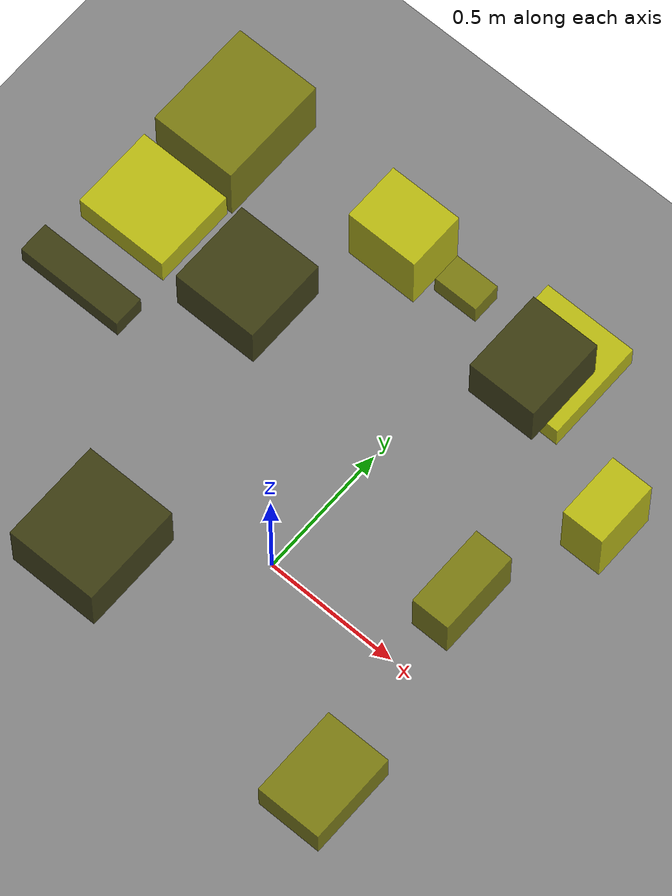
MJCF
<?xml version="1.0"?>
<mujoco model="obstacle_scene">
  <compiler angle="radian" coordinate="local"/>
  <option timestep="0.001" gravity="0 0 -9.81"/>

  <asset>
    <material name="obstacle_mat" rgba="0.8 0.8 0.0 0.8"/>
    <material name="ground_mat" rgba="0.5 0.5 0.5 1"/>
  </asset>

  <worldbody>
    <!-- Ground plane -->
    <geom name="ground" type="plane" size="3 3 0.1" material="ground_mat"/>

    <!-- Obstacles -->
    <body name="obstacle_0" pos="-0.294047 -0.498127 0.677630">
      <geom name="obs_0" type="box" size="0.167740 0.186006 0.105193" rgba="0.2 0.2 0.0 0.8"/>
    </body>
    <body name="obstacle_1" pos="0.632786 0.178173 0.454026">
      <geom name="obs_1" type="box" size="0.071756 0.153605 0.095304" rgba="0.5 0.5 0.0 0.8"/>
    </body>
    <body name="obstacle_2" pos="0.453056 0.814883 0.837150">
      <geom name="obs_2" type="box" size="0.170803 0.182468 0.049147" rgba="0.8 0.8 0.0 0.8"/>
    </body>
    <body name="obstacle_3" pos="0.525713 0.613955 1.242700">
      <geom name="obs_3" type="box" size="0.124753 0.149126 0.095150" rgba="0.2 0.2 0.0 0.8"/>
    </body>
    <body name="obstacle_4" pos="-0.821484 0.789135 0.900198">
      <geom name="obs_4" type="box" size="0.157203 0.202205 0.132492" rgba="0.5 0.5 0.0 0.8"/>
    </body>
    <body name="obstacle_5" pos="0.752000 0.755428 0.205111">
      <geom name="obs_5" type="box" size="0.080063 0.123262 0.132677" rgba="0.8 0.8 0.0 0.8"/>
    </body>
    <body name="obstacle_6" pos="-0.701113 -0.056796 1.256175">
      <geom name="obs_6" type="box" size="0.193758 0.054441 0.039216" rgba="0.2 0.2 0.0 0.8"/>
    </body>
    <body name="obstacle_7" pos="0.062566 0.864932 0.772484">
      <geom name="obs_7" type="box" size="0.083846 0.052509 0.044268" rgba="0.5 0.5 0.0 0.8"/>
    </body>
    <body name="obstacle_8" pos="-0.102388 0.751911 1.106030">
      <geom name="obs_8" type="box" size="0.131725 0.105126 0.132739" rgba="0.8 0.8 0.0 0.8"/>
    </body>
    <body name="obstacle_9" pos="-0.516938 0.487759 0.608342">
      <geom name="obs_9" type="box" size="0.159862 0.158025 0.097960" rgba="0.2 0.2 0.0 0.8"/>
    </body>
    <body name="obstacle_10" pos="0.871760 -0.758381 1.068938">
      <geom name="obs_10" type="box" size="0.116470 0.159265 0.061339" rgba="0.5 0.5 0.0 0.8"/>
    </body>
    <body name="obstacle_11" pos="-0.720720 0.294810 1.188372">
      <geom name="obs_11" type="box" size="0.167791 0.149450 0.056204" rgba="0.8 0.8 0.0 0.8"/>
    </body>
  </worldbody>
</mujoco>
